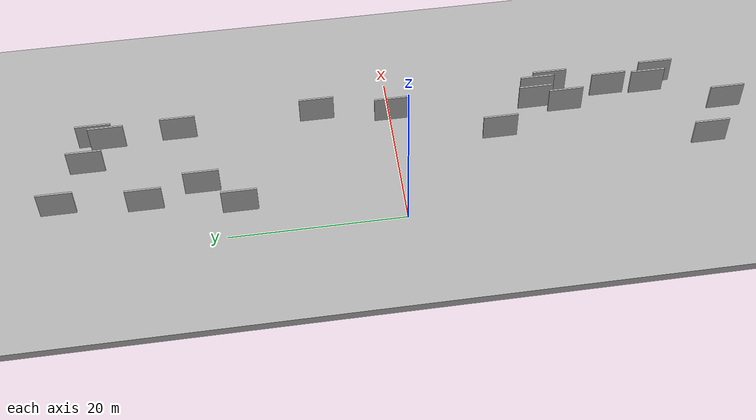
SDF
<?xml version="1.0" encoding="utf-8"?>

<sdf version="1.6">

   <world name="default">

      <gui fullscreen="0">

         <camera name="user_camera">

            <pose>-15 0 4.57585 0 0 0</pose>

            <view_controller>orbit</view_controller>

         </camera>

      </gui>

      <scene>

         <sky>

           <clouds>

             <speed>12</speed>

           </clouds>

         </sky>

         <ambient>0.4 0.4 0.4 1</ambient>

         <background>0.7 0.7 0.7 1</background>

         <shadows>1</shadows>

      </scene>

      <gravity>0 0 -9.8066</gravity>

      <magnetic_field>6e-06 2.3e-05 -4.2e-05</magnetic_field>

      <physics default="0" name="default_physics" type="ode">

         <ode>

            <solver>

               <type>quick</type>

               <iters>10</iters>

               <sor>1.0</sor>

               <use_dynamic_moi_rescaling>0</use_dynamic_moi_rescaling>

            </solver>

            <constraints>

               <cfm>0</cfm>

               <erp>0.2</erp>

               <contact_max_correcting_vel>100</contact_max_correcting_vel>

               <contact_surface_layer>0.001</contact_surface_layer>

            </constraints>

         </ode>

         <max_step_size>0.004</max_step_size>

         <real_time_factor>1</real_time_factor>

         <real_time_update_rate>250</real_time_update_rate>

      </physics>

      <light name="sun" type="directional">

         <cast_shadows>1</cast_shadows>

         <pose>0 0 10 0 0 0</pose>

         <diffuse>0.8 0.8 0.8 1</diffuse>

         <specular>0.2 0.2 0.2 1</specular>

         <attenuation>

            <range>1000</range>

            <constant>0.9</constant>

            <linear>0.01</linear>

            <quadratic>0.001</quadratic>

         </attenuation>

         <direction>-0.5 0.1 -0.9</direction>

      </light>

      <include>

         <name>ground_plane_1</name>

         <uri>model://HANNAS_ground_plane</uri>

         <pose>0 0 0  0 0 0</pose>

      </include>

      <include>

         <name>ground_plane_2</name>

         <uri>model://HANNAS_ground_plane</uri>

         <pose>100 0 0  0 0 0</pose>

      </include>

      <model name="HANNAS_wall_1">

         <static>1</static>

         <pose frame="">15.9819 -19.2099 0.0 0.000000 0.000000 1.570796</pose>

         <link name="link">

            <pose frame="">0 0 2.00 0 0 0</pose>

            <collision name="collision">

               <geometry>

                  <box>

                     <size>4.00 0.2 4.00</size>

                  </box>

               </geometry>

               <max_contacts>10</max_contacts>

               <surface>

                  <contact>

                     <ode/>

                  </contact>

                  <bounce/>

                  <friction>

                     <torsional>

                        <ode/>

                     </torsional>

                     <ode/>

                  </friction>

               </surface>

            </collision>

            <visual name="visual">

               <cast_shadows>0</cast_shadows>

               <geometry>

                  <box>

                     <size>4.00 0.2 4.00</size>

                  </box>

               </geometry>

               <material>

                  <script>

                     <uri>model://HANNAS_wall/materials/scripts</uri>

                     <uri>model://HANNAS_wall/materials/textures</uri>

                     <name>vrc/HANNAS_wall</name>

                  </script>

               </material>

            </visual>

            <self_collide>0</self_collide>

            <enable_wind>0</enable_wind>

            <kinematic>0</kinematic>

         </link>

      </model>

      <model name="HANNAS_wall_2">

         <static>1</static>

         <pose frame="">14.6547 -25.9899 0.0 0.000000 0.000000 1.570796</pose>

         <link name="link">

            <pose frame="">0 0 2.00 0 0 0</pose>

            <collision name="collision">

               <geometry>

                  <box>

                     <size>4.00 0.2 4.00</size>

                  </box>

               </geometry>

               <max_contacts>10</max_contacts>

               <surface>

                  <contact>

                     <ode/>

                  </contact>

                  <bounce/>

                  <friction>

                     <torsional>

                        <ode/>

                     </torsional>

                     <ode/>

                  </friction>

               </surface>

            </collision>

            <visual name="visual">

               <cast_shadows>0</cast_shadows>

               <geometry>

                  <box>

                     <size>4.00 0.2 4.00</size>

                  </box>

               </geometry>

               <material>

                  <script>

                     <uri>model://HANNAS_wall/materials/scripts</uri>

                     <uri>model://HANNAS_wall/materials/textures</uri>

                     <name>vrc/HANNAS_wall</name>

                  </script>

               </material>

            </visual>

            <self_collide>0</self_collide>

            <enable_wind>0</enable_wind>

            <kinematic>0</kinematic>

         </link>

      </model>

      <model name="HANNAS_wall_3">

         <static>1</static>

         <pose frame="">15.3178 -17.6294 0.0 0.000000 0.000000 1.570796</pose>

         <link name="link">

            <pose frame="">0 0 2.00 0 0 0</pose>

            <collision name="collision">

               <geometry>

                  <box>

                     <size>4.00 0.2 4.00</size>

                  </box>

               </geometry>

               <max_contacts>10</max_contacts>

               <surface>

                  <contact>

                     <ode/>

                  </contact>

                  <bounce/>

                  <friction>

                     <torsional>

                        <ode/>

                     </torsional>

                     <ode/>

                  </friction>

               </surface>

            </collision>

            <visual name="visual">

               <cast_shadows>0</cast_shadows>

               <geometry>

                  <box>

                     <size>4.00 0.2 4.00</size>

                  </box>

               </geometry>

               <material>

                  <script>

                     <uri>model://HANNAS_wall/materials/scripts</uri>

                     <uri>model://HANNAS_wall/materials/textures</uri>

                     <name>vrc/HANNAS_wall</name>

                  </script>

               </material>

            </visual>

            <self_collide>0</self_collide>

            <enable_wind>0</enable_wind>

            <kinematic>0</kinematic>

         </link>

      </model>

      <model name="HANNAS_wall_4">

         <static>1</static>

         <pose frame="">14.8927 24.5373 0.0 0.000000 0.000000 1.570796</pose>

         <link name="link">

            <pose frame="">0 0 2.00 0 0 0</pose>

            <collision name="collision">

               <geometry>

                  <box>

                     <size>4.00 0.2 4.00</size>

                  </box>

               </geometry>

               <max_contacts>10</max_contacts>

               <surface>

                  <contact>

                     <ode/>

                  </contact>

                  <bounce/>

                  <friction>

                     <torsional>

                        <ode/>

                     </torsional>

                     <ode/>

                  </friction>

               </surface>

            </collision>

            <visual name="visual">

               <cast_shadows>0</cast_shadows>

               <geometry>

                  <box>

                     <size>4.00 0.2 4.00</size>

                  </box>

               </geometry>

               <material>

                  <script>

                     <uri>model://HANNAS_wall/materials/scripts</uri>

                     <uri>model://HANNAS_wall/materials/textures</uri>

                     <name>vrc/HANNAS_wall</name>

                  </script>

               </material>

            </visual>

            <self_collide>0</self_collide>

            <enable_wind>0</enable_wind>

            <kinematic>0</kinematic>

         </link>

      </model>

      <model name="HANNAS_wall_5">

         <static>1</static>

         <pose frame="">5.6478 38.2847 0.0 0.000000 0.000000 1.570796</pose>

         <link name="link">

            <pose frame="">0 0 2.00 0 0 0</pose>

            <collision name="collision">

               <geometry>

                  <box>

                     <size>4.00 0.2 4.00</size>

                  </box>

               </geometry>

               <max_contacts>10</max_contacts>

               <surface>

                  <contact>

                     <ode/>

                  </contact>

                  <bounce/>

                  <friction>

                     <torsional>

                        <ode/>

                     </torsional>

                     <ode/>

                  </friction>

               </surface>

            </collision>

            <visual name="visual">

               <cast_shadows>0</cast_shadows>

               <geometry>

                  <box>

                     <size>4.00 0.2 4.00</size>

                  </box>

               </geometry>

               <material>

                  <script>

                     <uri>model://HANNAS_wall/materials/scripts</uri>

                     <uri>model://HANNAS_wall/materials/textures</uri>

                     <name>vrc/HANNAS_wall</name>

                  </script>

               </material>

            </visual>

            <self_collide>0</self_collide>

            <enable_wind>0</enable_wind>

            <kinematic>0</kinematic>

         </link>

      </model>

      <model name="HANNAS_wall_6">

         <static>1</static>

         <pose frame="">6.5522 22.2837 0.0 0.000000 0.000000 1.570796</pose>

         <link name="link">

            <pose frame="">0 0 2.00 0 0 0</pose>

            <collision name="collision">

               <geometry>

                  <box>

                     <size>4.00 0.2 4.00</size>

                  </box>

               </geometry>

               <max_contacts>10</max_contacts>

               <surface>

                  <contact>

                     <ode/>

                  </contact>

                  <bounce/>

                  <friction>

                     <torsional>

                        <ode/>

                     </torsional>

                     <ode/>

                  </friction>

               </surface>

            </collision>

            <visual name="visual">

               <cast_shadows>0</cast_shadows>

               <geometry>

                  <box>

                     <size>4.00 0.2 4.00</size>

                  </box>

               </geometry>

               <material>

                  <script>

                     <uri>model://HANNAS_wall/materials/scripts</uri>

                     <uri>model://HANNAS_wall/materials/textures</uri>

                     <name>vrc/HANNAS_wall</name>

                  </script>

               </material>

            </visual>

            <self_collide>0</self_collide>

            <enable_wind>0</enable_wind>

            <kinematic>0</kinematic>

         </link>

      </model>

      <model name="HANNAS_wall_7">

         <static>1</static>

         <pose frame="">14.3510 -0.1638 0.0 0.000000 0.000000 1.570796</pose>

         <link name="link">

            <pose frame="">0 0 2.00 0 0 0</pose>

            <collision name="collision">

               <geometry>

                  <box>

                     <size>4.00 0.2 4.00</size>

                  </box>

               </geometry>

               <max_contacts>10</max_contacts>

               <surface>

                  <contact>

                     <ode/>

                  </contact>

                  <bounce/>

                  <friction>

                     <torsional>

                        <ode/>

                     </torsional>

                     <ode/>

                  </friction>

               </surface>

            </collision>

            <visual name="visual">

               <cast_shadows>0</cast_shadows>

               <geometry>

                  <box>

                     <size>4.00 0.2 4.00</size>

                  </box>

               </geometry>

               <material>

                  <script>

                     <uri>model://HANNAS_wall/materials/scripts</uri>

                     <uri>model://HANNAS_wall/materials/textures</uri>

                     <name>vrc/HANNAS_wall</name>

                  </script>

               </material>

            </visual>

            <self_collide>0</self_collide>

            <enable_wind>0</enable_wind>

            <kinematic>0</kinematic>

         </link>

      </model>

      <model name="HANNAS_wall_8">

         <static>1</static>

         <pose frame="">15.8201 -31.9213 0.0 0.000000 0.000000 1.570796</pose>

         <link name="link">

            <pose frame="">0 0 2.00 0 0 0</pose>

            <collision name="collision">

               <geometry>

                  <box>

                     <size>4.00 0.2 4.00</size>

                  </box>

               </geometry>

               <max_contacts>10</max_contacts>

               <surface>

                  <contact>

                     <ode/>

                  </contact>

                  <bounce/>

                  <friction>

                     <torsional>

                        <ode/>

                     </torsional>

                     <ode/>

                  </friction>

               </surface>

            </collision>

            <visual name="visual">

               <cast_shadows>0</cast_shadows>

               <geometry>

                  <box>

                     <size>4.00 0.2 4.00</size>

                  </box>

               </geometry>

               <material>

                  <script>

                     <uri>model://HANNAS_wall/materials/scripts</uri>

                     <uri>model://HANNAS_wall/materials/textures</uri>

                     <name>vrc/HANNAS_wall</name>

                  </script>

               </material>

            </visual>

            <self_collide>0</self_collide>

            <enable_wind>0</enable_wind>

            <kinematic>0</kinematic>

         </link>

      </model>

      <model name="HANNAS_wall_9">

         <static>1</static>

         <pose frame="">4.9015 28.6653 0.0 0.000000 0.000000 1.570796</pose>

         <link name="link">

            <pose frame="">0 0 2.00 0 0 0</pose>

            <collision name="collision">

               <geometry>

                  <box>

                     <size>4.00 0.2 4.00</size>

                  </box>

               </geometry>

               <max_contacts>10</max_contacts>

               <surface>

                  <contact>

                     <ode/>

                  </contact>

                  <bounce/>

                  <friction>

                     <torsional>

                        <ode/>

                     </torsional>

                     <ode/>

                  </friction>

               </surface>

            </collision>

            <visual name="visual">

               <cast_shadows>0</cast_shadows>

               <geometry>

                  <box>

                     <size>4.00 0.2 4.00</size>

                  </box>

               </geometry>

               <material>

                  <script>

                     <uri>model://HANNAS_wall/materials/scripts</uri>

                     <uri>model://HANNAS_wall/materials/textures</uri>

                     <name>vrc/HANNAS_wall</name>

                  </script>

               </material>

            </visual>

            <self_collide>0</self_collide>

            <enable_wind>0</enable_wind>

            <kinematic>0</kinematic>

         </link>

      </model>

      <model name="HANNAS_wall_10">

         <static>1</static>

         <pose frame="">3.2611 18.2662 0.0 0.000000 0.000000 1.570796</pose>

         <link name="link">

            <pose frame="">0 0 2.00 0 0 0</pose>

            <collision name="collision">

               <geometry>

                  <box>

                     <size>4.00 0.2 4.00</size>

                  </box>

               </geometry>

               <max_contacts>10</max_contacts>

               <surface>

                  <contact>

                     <ode/>

                  </contact>

                  <bounce/>

                  <friction>

                     <torsional>

                        <ode/>

                     </torsional>

                     <ode/>

                  </friction>

               </surface>

            </collision>

            <visual name="visual">

               <cast_shadows>0</cast_shadows>

               <geometry>

                  <box>

                     <size>4.00 0.2 4.00</size>

                  </box>

               </geometry>

               <material>

                  <script>

                     <uri>model://HANNAS_wall/materials/scripts</uri>

                     <uri>model://HANNAS_wall/materials/textures</uri>

                     <name>vrc/HANNAS_wall</name>

                  </script>

               </material>

            </visual>

            <self_collide>0</self_collide>

            <enable_wind>0</enable_wind>

            <kinematic>0</kinematic>

         </link>

      </model>

      <model name="HANNAS_wall_11">

         <static>1</static>

         <pose frame="">14.4332 -30.7024 0.0 0.000000 0.000000 1.570796</pose>

         <link name="link">

            <pose frame="">0 0 2.00 0 0 0</pose>

            <collision name="collision">

               <geometry>

                  <box>

                     <size>4.00 0.2 4.00</size>

                  </box>

               </geometry>

               <max_contacts>10</max_contacts>

               <surface>

                  <contact>

                     <ode/>

                  </contact>

                  <bounce/>

                  <friction>

                     <torsional>

                        <ode/>

                     </torsional>

                     <ode/>

                  </friction>

               </surface>

            </collision>

            <visual name="visual">

               <cast_shadows>0</cast_shadows>

               <geometry>

                  <box>

                     <size>4.00 0.2 4.00</size>

                  </box>

               </geometry>

               <material>

                  <script>

                     <uri>model://HANNAS_wall/materials/scripts</uri>

                     <uri>model://HANNAS_wall/materials/textures</uri>

                     <name>vrc/HANNAS_wall</name>

                  </script>

               </material>

            </visual>

            <self_collide>0</self_collide>

            <enable_wind>0</enable_wind>

            <kinematic>0</kinematic>

         </link>

      </model>

      <model name="HANNAS_wall_12">

         <static>1</static>

         <pose frame="">9.8398 -12.2041 0.0 0.000000 0.000000 1.570796</pose>

         <link name="link">

            <pose frame="">0 0 2.00 0 0 0</pose>

            <collision name="collision">

               <geometry>

                  <box>

                     <size>4.00 0.2 4.00</size>

                  </box>

               </geometry>

               <max_contacts>10</max_contacts>

               <surface>

                  <contact>

                     <ode/>

                  </contact>

                  <bounce/>

                  <friction>

                     <torsional>

                        <ode/>

                     </torsional>

                     <ode/>

                  </friction>

               </surface>

            </collision>

            <visual name="visual">

               <cast_shadows>0</cast_shadows>

               <geometry>

                  <box>

                     <size>4.00 0.2 4.00</size>

                  </box>

               </geometry>

               <material>

                  <script>

                     <uri>model://HANNAS_wall/materials/scripts</uri>

                     <uri>model://HANNAS_wall/materials/textures</uri>

                     <name>vrc/HANNAS_wall</name>

                  </script>

               </material>

            </visual>

            <self_collide>0</self_collide>

            <enable_wind>0</enable_wind>

            <kinematic>0</kinematic>

         </link>

      </model>

      <model name="HANNAS_wall_13">

         <static>1</static>

         <pose frame="">13.8345 -17.1771 0.0 0.000000 0.000000 1.570796</pose>

         <link name="link">

            <pose frame="">0 0 2.00 0 0 0</pose>

            <collision name="collision">

               <geometry>

                  <box>

                     <size>4.00 0.2 4.00</size>

                  </box>

               </geometry>

               <max_contacts>10</max_contacts>

               <surface>

                  <contact>

                     <ode/>

                  </contact>

                  <bounce/>

                  <friction>

                     <torsional>

                        <ode/>

                     </torsional>

                     <ode/>

                  </friction>

               </surface>

            </collision>

            <visual name="visual">

               <cast_shadows>0</cast_shadows>

               <geometry>

                  <box>

                     <size>4.00 0.2 4.00</size>

                  </box>

               </geometry>

               <material>

                  <script>

                     <uri>model://HANNAS_wall/materials/scripts</uri>

                     <uri>model://HANNAS_wall/materials/textures</uri>

                     <name>vrc/HANNAS_wall</name>

                  </script>

               </material>

            </visual>

            <self_collide>0</self_collide>

            <enable_wind>0</enable_wind>

            <kinematic>0</kinematic>

         </link>

      </model>

      <model name="HANNAS_wall_14">

         <static>1</static>

         <pose frame="">15.0910 34.0844 0.0 0.000000 0.000000 1.570796</pose>

         <link name="link">

            <pose frame="">0 0 2.00 0 0 0</pose>

            <collision name="collision">

               <geometry>

                  <box>

                     <size>4.00 0.2 4.00</size>

                  </box>

               </geometry>

               <max_contacts>10</max_contacts>

               <surface>

                  <contact>

                     <ode/>

                  </contact>

                  <bounce/>

                  <friction>

                     <torsional>

                        <ode/>

                     </torsional>

                     <ode/>

                  </friction>

               </surface>

            </collision>

            <visual name="visual">

               <cast_shadows>0</cast_shadows>

               <geometry>

                  <box>

                     <size>4.00 0.2 4.00</size>

                  </box>

               </geometry>

               <material>

                  <script>

                     <uri>model://HANNAS_wall/materials/scripts</uri>

                     <uri>model://HANNAS_wall/materials/textures</uri>

                     <name>vrc/HANNAS_wall</name>

                  </script>

               </material>

            </visual>

            <self_collide>0</self_collide>

            <enable_wind>0</enable_wind>

            <kinematic>0</kinematic>

         </link>

      </model>

      <model name="HANNAS_wall_15">

         <static>1</static>

         <pose frame="">5.6755 -35.9718 0.0 0.000000 0.000000 1.570796</pose>

         <link name="link">

            <pose frame="">0 0 2.00 0 0 0</pose>

            <collision name="collision">

               <geometry>

                  <box>

                     <size>4.00 0.2 4.00</size>

                  </box>

               </geometry>

               <max_contacts>10</max_contacts>

               <surface>

                  <contact>

                     <ode/>

                  </contact>

                  <bounce/>

                  <friction>

                     <torsional>

                        <ode/>

                     </torsional>

                     <ode/>

                  </friction>

               </surface>

            </collision>

            <visual name="visual">

               <cast_shadows>0</cast_shadows>

               <geometry>

                  <box>

                     <size>4.00 0.2 4.00</size>

                  </box>

               </geometry>

               <material>

                  <script>

                     <uri>model://HANNAS_wall/materials/scripts</uri>

                     <uri>model://HANNAS_wall/materials/textures</uri>

                     <name>vrc/HANNAS_wall</name>

                  </script>

               </material>

            </visual>

            <self_collide>0</self_collide>

            <enable_wind>0</enable_wind>

            <kinematic>0</kinematic>

         </link>

      </model>

      <model name="HANNAS_wall_16">

         <static>1</static>

         <pose frame="">10.6783 -39.2386 0.0 0.000000 0.000000 1.570796</pose>

         <link name="link">

            <pose frame="">0 0 2.00 0 0 0</pose>

            <collision name="collision">

               <geometry>

                  <box>

                     <size>4.00 0.2 4.00</size>

                  </box>

               </geometry>

               <max_contacts>10</max_contacts>

               <surface>

                  <contact>

                     <ode/>

                  </contact>

                  <bounce/>

                  <friction>

                     <torsional>

                        <ode/>

                     </torsional>

                     <ode/>

                  </friction>

               </surface>

            </collision>

            <visual name="visual">

               <cast_shadows>0</cast_shadows>

               <geometry>

                  <box>

                     <size>4.00 0.2 4.00</size>

                  </box>

               </geometry>

               <material>

                  <script>

                     <uri>model://HANNAS_wall/materials/scripts</uri>

                     <uri>model://HANNAS_wall/materials/textures</uri>

                     <name>vrc/HANNAS_wall</name>

                  </script>

               </material>

            </visual>

            <self_collide>0</self_collide>

            <enable_wind>0</enable_wind>

            <kinematic>0</kinematic>

         </link>

      </model>

      <model name="HANNAS_wall_17">

         <static>1</static>

         <pose frame="">14.5971 32.6836 0.0 0.000000 0.000000 1.570796</pose>

         <link name="link">

            <pose frame="">0 0 2.00 0 0 0</pose>

            <collision name="collision">

               <geometry>

                  <box>

                     <size>4.00 0.2 4.00</size>

                  </box>

               </geometry>

               <max_contacts>10</max_contacts>

               <surface>

                  <contact>

                     <ode/>

                  </contact>

                  <bounce/>

                  <friction>

                     <torsional>

                        <ode/>

                     </torsional>

                     <ode/>

                  </friction>

               </surface>

            </collision>

            <visual name="visual">

               <cast_shadows>0</cast_shadows>

               <geometry>

                  <box>

                     <size>4.00 0.2 4.00</size>

                  </box>

               </geometry>

               <material>

                  <script>

                     <uri>model://HANNAS_wall/materials/scripts</uri>

                     <uri>model://HANNAS_wall/materials/textures</uri>

                     <name>vrc/HANNAS_wall</name>

                  </script>

               </material>

            </visual>

            <self_collide>0</self_collide>

            <enable_wind>0</enable_wind>

            <kinematic>0</kinematic>

         </link>

      </model>

      <model name="HANNAS_wall_18">

         <static>1</static>

         <pose frame="">12.8742 -20.5336 0.0 0.000000 0.000000 1.570796</pose>

         <link name="link">

            <pose frame="">0 0 2.00 0 0 0</pose>

            <collision name="collision">

               <geometry>

                  <box>

                     <size>4.00 0.2 4.00</size>

                  </box>

               </geometry>

               <max_contacts>10</max_contacts>

               <surface>

                  <contact>

                     <ode/>

                  </contact>

                  <bounce/>

                  <friction>

                     <torsional>

                        <ode/>

                     </torsional>

                     <ode/>

                  </friction>

               </surface>

            </collision>

            <visual name="visual">

               <cast_shadows>0</cast_shadows>

               <geometry>

                  <box>

                     <size>4.00 0.2 4.00</size>

                  </box>

               </geometry>

               <material>

                  <script>

                     <uri>model://HANNAS_wall/materials/scripts</uri>

                     <uri>model://HANNAS_wall/materials/textures</uri>

                     <name>vrc/HANNAS_wall</name>

                  </script>

               </material>

            </visual>

            <self_collide>0</self_collide>

            <enable_wind>0</enable_wind>

            <kinematic>0</kinematic>

         </link>

      </model>

      <model name="HANNAS_wall_19">

         <static>1</static>

         <pose frame="">11.2492 35.1120 0.0 0.000000 0.000000 1.570796</pose>

         <link name="link">

            <pose frame="">0 0 2.00 0 0 0</pose>

            <collision name="collision">

               <geometry>

                  <box>

                     <size>4.00 0.2 4.00</size>

                  </box>

               </geometry>

               <max_contacts>10</max_contacts>

               <surface>

                  <contact>

                     <ode/>

                  </contact>

                  <bounce/>

                  <friction>

                     <torsional>

                        <ode/>

                     </torsional>

                     <ode/>

                  </friction>

               </surface>

            </collision>

            <visual name="visual">

               <cast_shadows>0</cast_shadows>

               <geometry>

                  <box>

                     <size>4.00 0.2 4.00</size>

                  </box>

               </geometry>

               <material>

                  <script>

                     <uri>model://HANNAS_wall/materials/scripts</uri>

                     <uri>model://HANNAS_wall/materials/textures</uri>

                     <name>vrc/HANNAS_wall</name>

                  </script>

               </material>

            </visual>

            <self_collide>0</self_collide>

            <enable_wind>0</enable_wind>

            <kinematic>0</kinematic>

         </link>

      </model>

      <model name="HANNAS_wall_20">

         <static>1</static>

         <pose frame="">15.5370 8.4981 0.0 0.000000 0.000000 1.570796</pose>

         <link name="link">

            <pose frame="">0 0 2.00 0 0 0</pose>

            <collision name="collision">

               <geometry>

                  <box>

                     <size>4.00 0.2 4.00</size>

                  </box>

               </geometry>

               <max_contacts>10</max_contacts>

               <surface>

                  <contact>

                     <ode/>

                  </contact>

                  <bounce/>

                  <friction>

                     <torsional>

                        <ode/>

                     </torsional>

                     <ode/>

                  </friction>

               </surface>

            </collision>

            <visual name="visual">

               <cast_shadows>0</cast_shadows>

               <geometry>

                  <box>

                     <size>4.00 0.2 4.00</size>

                  </box>

               </geometry>

               <material>

                  <script>

                     <uri>model://HANNAS_wall/materials/scripts</uri>

                     <uri>model://HANNAS_wall/materials/textures</uri>

                     <name>vrc/HANNAS_wall</name>

                  </script>

               </material>

            </visual>

            <self_collide>0</self_collide>

            <enable_wind>0</enable_wind>

            <kinematic>0</kinematic>

         </link>

      </model>

   </world>

</sdf>

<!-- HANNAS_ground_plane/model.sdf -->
<sdf version="1.4">
<model name="HANNAS_ground_plane">
  <static>true</static>
    <link name="link">
      <collision name="collision">
        <geometry>
          <plane>
            <normal>0 0 1</normal>
            <size>1000 1000</size>
          </plane>
        </geometry>
        <surface>
          <friction>
            <ode>
              <mu>100</mu>
              <mu2>50</mu2>
            </ode>
          </friction>
        </surface>
      </collision>
      <visual name="visual">
        <cast_shadows>false</cast_shadows>
        <geometry>
          <plane>
            <normal>0 0 1</normal>
            <size>1000 1000</size>
          </plane>
        </geometry>
        <material>
          <script>
            <uri>model://HANNAS_ground_plane/materials/scripts/HANNAS_ground_plane.material</uri>
	    <uri>model://HANNAS_ground_plane/materials/textures</uri>
            <name>HANNASGroundPlane/Image</name>
          </script>
        </material>
      </visual>
    </link>
  </model>
</sdf>
